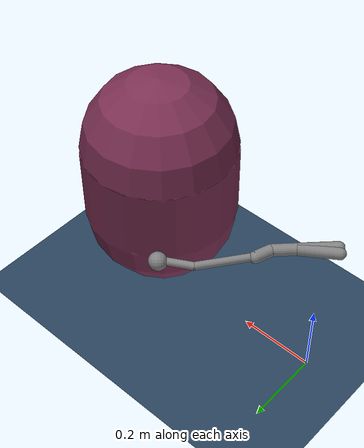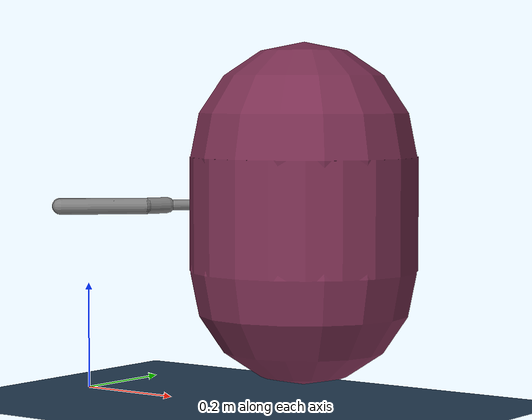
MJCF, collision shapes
<mujoco model="go1 scene">

  <include file="finger.xml" />

  <statistic center="0 0 0.1" extent="0.8" />

  <visual>
    <headlight diffuse="0.6 0.6 0.6" ambient="0.3 0.3 0.3" specular="0 0 0" />
    <rgba haze="0.15 0.25 0.35 1" />
    <global azimuth="120" elevation="-20" />
  </visual>

  <asset>
    <texture type="skybox" builtin="gradient" rgb1="0.3 0.5 0.7" rgb2="0 0 0" width="512"
      height="3072" />
    <texture type="2d" name="groundplane" builtin="checker" mark="edge" rgb1="0.2 0.3 0.4"
      rgb2="0.1 0.2 0.3"
      markrgb="0.8 0.8 0.8" width="300" height="300" />
    <material name="groundplane" texture="groundplane" texuniform="true" texrepeat="5 5"
      reflectance="0.2" />
  </asset>

  <worldbody>
    <light pos="0 0 1.5" dir="0 0 -1" directional="true" />
    <geom name="floor" size="0 0 0.05" type="plane" material="groundplane" />
  </worldbody>

</mujoco>

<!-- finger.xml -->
<mujoco model="go1">
    <compiler angle="radian" meshdir="assets" autolimits="true" />

    <default>
        <default class="go1">
            <geom friction="0.6" margin="0.001" condim="3" />
            <joint axis="0 1 0" damping="2" armature="0.01" />
            <position kp="100" forcerange="-23.7 23.7" />
            <default class="abduction">
                <joint axis="1 0 0" damping="1" range="-0.863 0.863" />
                <position ctrlrange="-0.863 0.863" />
            </default>
            <default class="hip">
                <joint ref="-1.35" />
                <position ctrlrange="-0.5 0.5" />
            </default>
            <default class="knee">
                <joint ref="1.7" />
                <position forcerange="-35.55 35.55" ctrlrange="-0.5 1.5" />
            </default>
            <default class="visual">
                <geom type="mesh" contype="0" conaffinity="0" group="2" material="dark" />
            </default>
            <default class="collision">
                <geom group="3" type="capsule" />
                <default class="hip_left1">
                    <geom size="0.046 0.02" pos="0 0.045 0" quat="1 1 0 0" type="cylinder" />
                </default>
                <default class="hip_left2">
                    <geom size="0.031 0.02" pos="0 0.065 0" quat="1 1 0 0" type="cylinder" />
                </default>
                <default class="hip_left3">
                    <geom size="0.046 0.02" quat="1 1 0 0" type="cylinder" />
                </default>
                <default class="hip_right1">
                    <geom size="0.046 0.02" pos="0 -0.045 0" quat="1 1 0 0" type="cylinder" />
                </default>
                <default class="hip_right2">
                    <geom size="0.031 0.02" pos="0 -0.065 0" quat="1 1 0 0" type="cylinder" />
                </default>
                <default class="hip_right3">
                    <geom size="0.046 0.02" quat="1 1 0 0" type="cylinder" />
                </default>
                <default class="thigh1">
                    <geom size="0.015" fromto="-0.02 0 0 -0.02 0 -0.16" />
                </default>
                <default class="thigh2">
                    <geom size="0.015" fromto="0 0 0 -0.02 0 -0.1" />
                </default>
                <default class="thigh3">
                    <geom size="0.015" fromto="-0.02 0 -0.16 0 0 -0.2" />
                </default>
                <default class="calf1">
                    <geom size="0.01" fromto="0 0 0 0.02 0 -0.13" />
                </default>
                <default class="calf2">
                    <geom size="0.01" fromto="0.02 0 -0.13 0 0 -0.2" />
                </default>
                <default class="foot">
                    <geom type="sphere" size="0.023" pos="0 0 -0.213" priority="1"
                        solimp="0.015 1 0.031" condim="3"
                        friction="0.8 0.02 0.01" />
                </default>
            </default>
        </default>
    </default>

    <asset>
        <material name="dark" rgba="0.1 0.1 0.1 1" />
        <mesh class="go1" file="trunk.stl" />
        <mesh class="go1" file="hip.stl" />
        <mesh class="go1" file="thigh_mirror.stl" />
        <mesh class="go1" file="calf.stl" />
        <mesh class="go1" file="thigh.stl" />

        <texture type="cube" name="wheel" builtin="checker" rgb1="0.2 0.3 0.4"
            rgb2="0.76 0.07 0.24" width="300" height="300" />
        <material name="wheel" texture="wheel" texuniform="true" texrepeat="5 5"
            reflectance="0.2" />
    </asset>

    <worldbody>
        <body name="wheel" pos="0.5 0 0.35">
            <joint name="wheel_axis" springdamper="1 10" />
            <geom type="capsule" size="0.2 0.1" material="wheel" />
            <inertial pos="0 0 0" mass="0.5" diaginertia="0.01 0.01 0.02" />
        </body>
        <light name="spotlight" mode="targetbodycom" target="FR_thigh" pos="0 -1 2" />
        <body name="FR_thigh" pos="0 -0.08 0.35" euler="-1.5708 -2.3562 0">
            <inertial pos="-0.00304722 0.019315 -0.0305004"
                quat="0.65243 -0.0272313 0.0775126 0.753383" mass="1.009"
                diaginertia="0.00478717 0.00460903 0.000709268" />
            <joint class="hip" name="FR_thigh_joint" />
            <geom class="visual" mesh="thigh_mirror" />
            <geom class="thigh1" />
            <geom class="thigh2" />
            <geom class="thigh3" />
            <body name="FR_calf" pos="0 0 -0.213">
                <inertial pos="0.00429862 0.000976676 -0.146197"
                    quat="0.691246 0.00357467 0.00511118 0.722592"
                    mass="0.195862" diaginertia="0.00149767 0.00148468 3.58427e-05" />
                <joint class="knee" name="FR_calf_joint" />
                <geom class="visual" mesh="calf" />
                <geom class="calf1" />
                <geom class="calf2" />
                <geom name="FR" class="foot" />
                <site name="FR" pos="0 0 -0.213" type="sphere" size="0.023" group="5" />
            </body>
        </body>
        <camera name="main_cam" pos="0 -1.0 1.0" mode="targetbody" target="wheel" />
        <camera name="topdown" pos="0.25 0.0 1.5" euler="0 0 1.5708" />
    </worldbody>

    <actuator>
        <position class="hip" name="FR_thigh" joint="FR_thigh_joint" forcerange="-20 20" />
        <position class="knee" name="FR_calf" joint="FR_calf_joint" forcerange="-20 20" />
    </actuator>

    <visual>
        <global offwidth="1024" offheight="1024" />
    </visual>

</mujoco>
